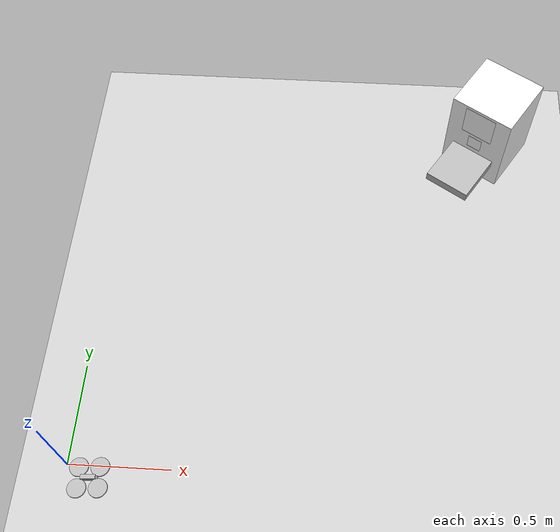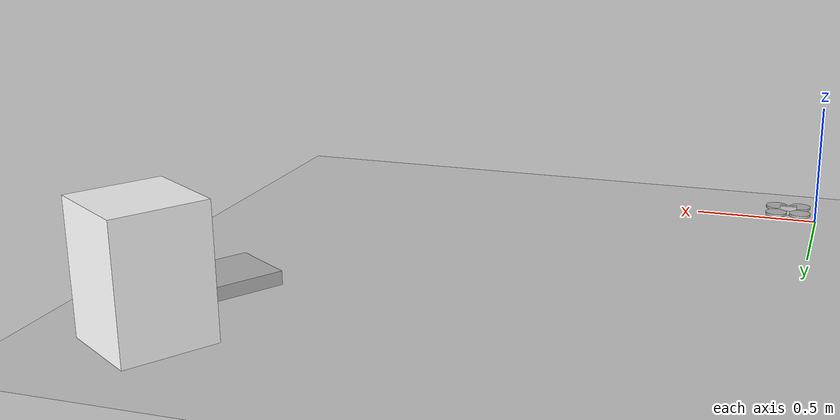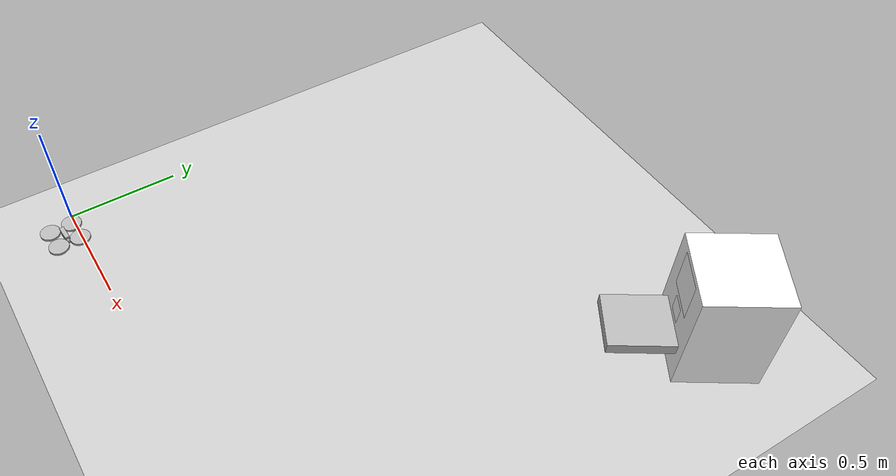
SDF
<sdf version="1.7">
 <world name="default">
  <physics name="normal" type="ode">
   <real_time_update_rate>1000</real_time_update_rate>
   <max_step_size>0.001</max_step_size>
   <real_time_factor>1</real_time_factor>
  </physics>
  <model name="ground_plane">
   <static>1</static>
   <link name="link">
    <collision name="collision">
     <geometry><plane><normal>0 0 1</normal><size>100 100</size></plane></geometry>
     <surface><friction><ode><mu>100</mu><mu2>50</mu2></ode></friction></surface>
    </collision>
    <visual name="visual">
     <cast_shadows>0</cast_shadows>
     <geometry><plane><normal>0 0 1</normal><size>100 100</size></plane></geometry>
     <material>
      <script><uri>file://media/materials/scripts/gazebo.material</uri><name>Gazebo/Grey</name></script>
     </material>
    </visual>
   </link>
  </model>
  <light name="sun" type="directional">
   <pose>0 0 10 0 -0 0</pose>
   <diffuse>0.8 0.8 0.8 1</diffuse>
   <specular>0.2 0.2 0.2 1</specular>
   <attenuation>
    <range>1000</range>
    <constant>0.9</constant>
    <linear>0.01</linear>
    <quadratic>0.001</quadratic>
   </attenuation>
   <direction>-0.5 0.1 -0.9</direction>
   <spot><inner_angle>0</inner_angle><outer_angle>0</outer_angle><falloff>0</falloff></spot>
  </light>
  <gravity>0 0 -9.8</gravity>
  <magnetic_field>6e-06 2.3e-05 -4.2e-05</magnetic_field>
  <atmosphere type="adiabatic"/>
  <scene><ambient>0.4 0.4 0.4 1</ambient><background>0.7 0.7 0.7 1</background><shadows>1</shadows></scene>
  <spherical_coordinates>
   <surface_model>EARTH_WGS84</surface_model>
   <latitude_deg>0</latitude_deg>
   <longitude_deg>0</longitude_deg>
   <elevation>0</elevation>
   <heading_deg>0</heading_deg>
  </spherical_coordinates>
  <model name="tello_1">
   <link name="base_link_1">
    <inertial>
     <pose>3e-06 0 0 0 -0 0</pose>
     <mass>0.10001</mass>
     <inertia>
      <ixx>0.000291833</ixx>
      <ixy>0</ixy>
      <ixz>0</ixz>
      <iyy>0.000541012</iyy>
      <iyz>0</iyz>
      <izz>0.000291845</izz>
     </inertia>
    </inertial>
    <collision name="base_link_1_fixed_joint_lump__collision_collision">
     <geometry><box><size>0.18 0.18 0.05</size></box></geometry>
    </collision>
    <collision name="base_link_1_fixed_joint_lump__camera_link_1_collision_1">
     <pose>0.035 0 0 0 -0 0</pose>
     <geometry><sphere><radius>0.01</radius></sphere></geometry>
    </collision>
    <visual name="base_link_1_visual">
     <pose>0 0 0.01 0 -0 0</pose>
     <geometry><box><size>0.07 0.02 0.02</size></box></geometry>
    </visual>
    <visual name="base_link_1_visual_1">
     <pose>0 0 -0.01 0 -0 0</pose>
     <geometry><box><size>0.07 0.02 0.02</size></box></geometry>
    </visual>
    <visual name="base_link_1_visual_2">
     <pose>0.05 -0.05 0 0 -0 0</pose>
     <geometry><cylinder><length>0.01</length><radius>0.045</radius></cylinder></geometry>
    </visual>
    <visual name="base_link_1_visual_3">
     <pose>-0.05 0.05 0 0 -0 0</pose>
     <geometry><cylinder><length>0.01</length><radius>0.045</radius></cylinder></geometry>
    </visual>
    <visual name="base_link_1_visual_4">
     <pose>-0.05 -0.05 0 0 -0 0</pose>
     <geometry><cylinder><length>0.01</length><radius>0.045</radius></cylinder></geometry>
    </visual>
    <visual name="base_link_1_visual_5">
     <pose>0.05 0.05 0 0 -0 0</pose>
     <geometry><cylinder><length>0.01</length><radius>0.045</radius></cylinder></geometry>
    </visual>
    <visual name="base_link_1_fixed_joint_lump__camera_link_1_visual_6">
     <pose>0.035 0 0 0 -0 0</pose>
     <geometry><sphere><radius>0.01</radius></sphere></geometry>
    </visual>
    <sensor name="drone1" type="camera">
     <update_rate>50</update_rate>
     <camera name="head">
      <horizontal_fov>0.96</horizontal_fov>
      <image><width>960</width><height>720</height><format>R8G8B8</format></image>
      <clip><near>0.1</near><far>300</far></clip>
      <noise><type>gaussian</type><mean>0</mean><stddev>0.007</stddev></noise>
     </camera>
     <plugin name="camera_controller_1" filename="libgazebo_ros_camera.so">
      <alwaysOn>1</alwaysOn>
      <updateRate>0.0</updateRate>
      <cameraName>this_is_ignored</cameraName>
      <imageTopicName>image_raw</imageTopicName>
      <cameraInfoTopicName>camera_info</cameraInfoTopicName>
      <frameName>camera_link_1</frameName>
      <hackBaseline>0.07</hackBaseline>
      <distortionK1>0.0</distortionK1>
      <distortionK2>0.0</distortionK2>
      <distortionK3>0.0</distortionK3>
      <distortionT1>0.0</distortionT1>
      <distortionT2>0.0</distortionT2>
     </plugin>
     <pose>0.035 0 0 0 -0 0</pose>
    </sensor>
   </link>
   <static>0</static>
   <plugin name="TelloPlugin" filename="libTelloPlugin.so">
    <namespace>drone1</namespace>
    <parameter name="use_sim_time" type="bool">1</parameter>
    <link_name>base_link_1</link_name>
    <center_of_mass>0 0 0</center_of_mass>
   </plugin>
   <pose>0.119817 -0.063538 0.025 0 -0 0.063238</pose>
  </model>
  <model name="Charging Dock With ArUco">
   <static>1</static>
   <link name="docking_station_link">
    <pose>0 0 0.25 0 -0 0</pose>
    <inertial>
     <mass>1</mass>
     <inertia><ixx>0.083</ixx><ixy>0</ixy><ixz>0</ixz><iyy>0.083</iyy><iyz>0</iyz><izz>0.083</izz></inertia>
    </inertial>
    <collision name="docking_station_collision">
     <geometry><box><size>0.35 0.35 0.5</size></box></geometry>
    </collision>
    <visual name="docking_station_visual">
     <geometry><box><size>0.35 0.35 0.5</size></box></geometry>
     <material>
      <ambient>1 1 1 1</ambient>
      <diffuse>1 1 1 1</diffuse>
      <specular>0 0 0 0</specular>
      <emissive>0 0 0 1</emissive>
     </material>
    </visual>
    <collision name="landing">
     <pose relative_to="docking_station_link">0.3 0 -0.1 0 -0 0</pose>
     <geometry><box><size>0.3 0.25 0.05</size></box></geometry>
    </collision>
    <visual name="visual">
     <pose relative_to="docking_station_link">0.3 0 -0.1 0 -0 0</pose>
     <geometry><box><size>0.3 0.25 0.05</size></box></geometry>
    </visual>
   </link>
   <link name="aruco_marker_link">
    <pose>0.18 0 0.4 -9.3e-05 1.57079 3.14159</pose>
    <visual name="visual">
     <geometry><box><size>0.1778 0.1778 1e-05</size></box></geometry>
     <material>
      <script>
       <uri>model://charging_dock_with_aruco/materials/scripts</uri>
       <uri>model://charging_dock_with_aruco/materials/textures</uri>
       <name>ArucoVisualMarker1/Marker</name>
      </script>
      <ambient>1 1 1 1</ambient>
      <diffuse>1 1 1 1</diffuse>
      <specular>0 0 0 1</specular>
      <emissive>1 1 1 0</emissive>
      <shader type="vertex"><normal_map>__default__</normal_map></shader>
     </material>
    </visual>
   </link>
   <link name="aruco_marker_link_2">
    <pose>0.18 0 0.25 -9.3e-05 1.57079 3.14159</pose>
    <visual name="visual">
     <geometry><box><size>0.08 0.08 1e-05</size></box></geometry>
     <material>
      <script>
       <uri>model://marker_0/materials/scripts</uri>
       <uri>model://marker_0/materials/textures</uri>
       <name>ArucoVisualMarker0/Marker</name>
      </script>
      <ambient>1 1 1 1</ambient>
      <diffuse>1 1 1 1</diffuse>
      <specular>0 0 0 1</specular>
      <emissive>1 1 1 0</emissive>
      <shader type="vertex"><normal_map>__default__</normal_map></shader>
     </material>
    </visual>
   </link>
   <pose>2.04788 1.97572 0 0 -0 -2.13982</pose>
  </model>
 </world>
</sdf>
